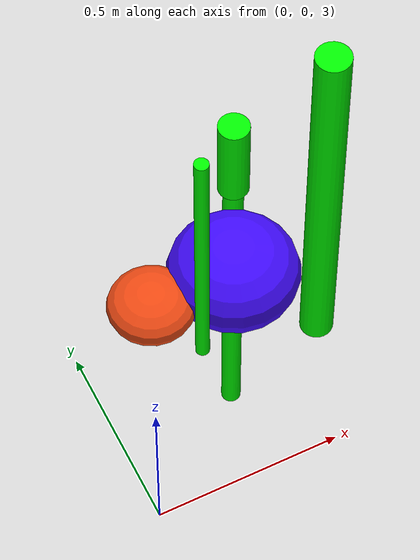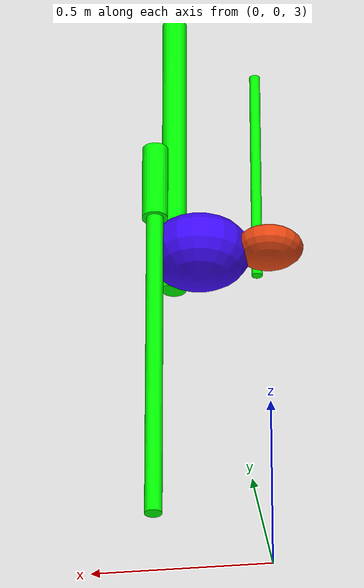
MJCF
<mujoco model="unnamed_model">
  <option timestep="0.01"/>
  <visual>
    <headlight ambient="0.5 0.5 0.5"/>
  </visual>
  <default>
    <default class="/"/>
  </default>
  <worldbody>
    <light name="//unnamed_light_0" class="/" pos="0 0 3" dir="0 0 -1" diffuse="0.5 0.5 0.5"/>
    <geom name="//unnamed_geom_0" class="/" type="plane" size="50 50 0.10000000000000001"/>
    <body name="//unnamed_body_0" pos="0 0 4">
      <joint name="//unnamed_joint_0" class="/" type="free"/>
      <geom name="//unnamed_geom_1" class="/" type="ellipsoid" size="0.10000000000000001 0.10000000000000001 0.050000000000000003" rgba="0.91000000000000003 0.27800000000000002 0.070999999999999994 1" pos="0 0 0"/>
      <geom name="//unnamed_geom_2" class="/" type="ellipsoid" size="0.14999999999999999 0.14999999999999999 0.10000000000000001" rgba="0.247 0.035000000000000003 0.97999999999999998 1" pos="0.20000000000000001 0 0"/>
      <body name="limb1" pos="0.29999999999999999 0.20000000000000001 -0.46458558835765873">
        <geom name="//unnamed_geom_3" class="/" type="cylinder" size="0.024358379568083205 0.46458558835765873" rgba="0 1 0 1"/>
        <joint name="limb1_joint" class="/" type="hinge" pos="0 0 0.46458558835765873" axis="0 1 0" range="-45 45"/>
      </body>
      <body name="back_limb1" pos="0.050000000000000003 -0.14999999999999999 0.34703281701624122">
        <geom name="//unnamed_geom_4" class="/" type="cylinder" size="0.015637497876483761 0.34703281701624122" rgba="0 1 0 1"/>
        <joint name="back_limb1_joint" class="/" type="hinge" pos="0 0 -0.34703281701624122" axis="0 1 0" range="-45 45"/>
      </body>
      <body name="back_limb2" pos="0.29999999999999999 0.20000000000000001 0.11559498860434531">
        <geom name="//unnamed_geom_5" class="/" type="cylinder" size="0.036693110109236399 0.11559498860434531" rgba="0 1 0 1"/>
        <joint name="back_limb2_joint" class="/" type="hinge" pos="0 0 -0.11559498860434531" axis="0 1 0" range="-45 45"/>
      </body>
      <body name="back_limb3" pos="0.29999999999999999 -0.20000000000000001 0.47198067012366551">
        <geom name="//unnamed_geom_6" class="/" type="cylinder" size="0.03656882933145756 0.47198067012366551" rgba="0 1 0 1"/>
        <joint name="back_limb3_joint" class="/" type="hinge" pos="0 0 -0.47198067012366551" axis="0 1 0" range="-45 45"/>
      </body>
    </body>
  </worldbody>
  <actuator>
    <motor name="motor_limb1_joint" class="/" ctrllimited="true" ctrlrange="-45 45" gear="1" joint="limb1_joint"/>
    <motor name="motor_back_back_limb1_joint" class="/" ctrllimited="true" ctrlrange="-45 45" gear="1" joint="back_limb1_joint"/>
    <motor name="motor_back_back_limb2_joint" class="/" ctrllimited="true" ctrlrange="-45 45" gear="1" joint="back_limb2_joint"/>
    <motor name="motor_back_back_limb3_joint" class="/" ctrllimited="true" ctrlrange="-45 45" gear="1" joint="back_limb3_joint"/>
  </actuator>
</mujoco>
